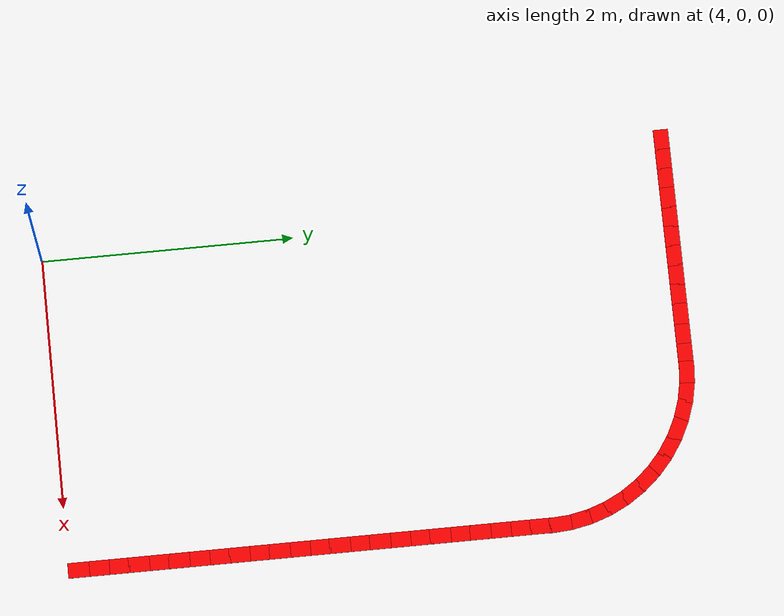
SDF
<sdf version="1.6">
 <world name="transformer_world">
  <model name="path_right_24">
   <static>true</static>
   <pose>6.50000 0.07917 0.00300 0 0 1.57080</pose>
   <link name="link">
    <visual name="visual">
     <cast_shadows>false</cast_shadows>
     <geometry><box><size>0.16833 0.12000 0.00600</size></box></geometry>
     <material><ambient>1 0 0 1</ambient><diffuse>1 0 0 1</diffuse><emissive>0.35 0 0 1</emissive></material>
    </visual>
   </link>
  </model>
  <model name="path_right_25">
   <static>true</static>
   <pose>6.50000 0.23750 0.00300 0 0 1.57080</pose>
   <link name="link">
    <visual name="visual">
     <cast_shadows>false</cast_shadows>
     <geometry><box><size>0.16833 0.12000 0.00600</size></box></geometry>
     <material><ambient>1 0 0 1</ambient><diffuse>1 0 0 1</diffuse><emissive>0.35 0 0 1</emissive></material>
    </visual>
   </link>
  </model>
  <model name="path_right_26">
   <static>true</static>
   <pose>6.50000 0.39583 0.00300 0 0 1.57080</pose>
   <link name="link">
    <visual name="visual">
     <cast_shadows>false</cast_shadows>
     <geometry><box><size>0.16833 0.12000 0.00600</size></box></geometry>
     <material><ambient>1 0 0 1</ambient><diffuse>1 0 0 1</diffuse><emissive>0.35 0 0 1</emissive></material>
    </visual>
   </link>
  </model>
  <model name="path_right_27">
   <static>true</static>
   <pose>6.50000 0.55417 0.00300 0 0 1.57080</pose>
   <link name="link">
    <visual name="visual">
     <cast_shadows>false</cast_shadows>
     <geometry><box><size>0.16833 0.12000 0.00600</size></box></geometry>
     <material><ambient>1 0 0 1</ambient><diffuse>1 0 0 1</diffuse><emissive>0.35 0 0 1</emissive></material>
    </visual>
   </link>
  </model>
  <model name="path_right_28">
   <static>true</static>
   <pose>6.50000 0.71250 0.00300 0 0 1.57080</pose>
   <link name="link">
    <visual name="visual">
     <cast_shadows>false</cast_shadows>
     <geometry><box><size>0.16833 0.12000 0.00600</size></box></geometry>
     <material><ambient>1 0 0 1</ambient><diffuse>1 0 0 1</diffuse><emissive>0.35 0 0 1</emissive></material>
    </visual>
   </link>
  </model>
  <model name="path_right_29">
   <static>true</static>
   <pose>6.50000 0.87083 0.00300 0 0 1.57080</pose>
   <link name="link">
    <visual name="visual">
     <cast_shadows>false</cast_shadows>
     <geometry><box><size>0.16833 0.12000 0.00600</size></box></geometry>
     <material><ambient>1 0 0 1</ambient><diffuse>1 0 0 1</diffuse><emissive>0.35 0 0 1</emissive></material>
    </visual>
   </link>
  </model>
  <model name="path_right_30">
   <static>true</static>
   <pose>6.50000 1.02917 0.00300 0 0 1.57080</pose>
   <link name="link">
    <visual name="visual">
     <cast_shadows>false</cast_shadows>
     <geometry><box><size>0.16833 0.12000 0.00600</size></box></geometry>
     <material><ambient>1 0 0 1</ambient><diffuse>1 0 0 1</diffuse><emissive>0.35 0 0 1</emissive></material>
    </visual>
   </link>
  </model>
  <model name="path_right_31">
   <static>true</static>
   <pose>6.50000 1.18750 0.00300 0 0 1.57080</pose>
   <link name="link">
    <visual name="visual">
     <cast_shadows>false</cast_shadows>
     <geometry><box><size>0.16833 0.12000 0.00600</size></box></geometry>
     <material><ambient>1 0 0 1</ambient><diffuse>1 0 0 1</diffuse><emissive>0.35 0 0 1</emissive></material>
    </visual>
   </link>
  </model>
  <model name="path_right_32">
   <static>true</static>
   <pose>6.50000 1.34583 0.00300 0 0 1.57080</pose>
   <link name="link">
    <visual name="visual">
     <cast_shadows>false</cast_shadows>
     <geometry><box><size>0.16833 0.12000 0.00600</size></box></geometry>
     <material><ambient>1 0 0 1</ambient><diffuse>1 0 0 1</diffuse><emissive>0.35 0 0 1</emissive></material>
    </visual>
   </link>
  </model>
  <model name="path_right_33">
   <static>true</static>
   <pose>6.50000 1.50417 0.00300 0 0 1.57080</pose>
   <link name="link">
    <visual name="visual">
     <cast_shadows>false</cast_shadows>
     <geometry><box><size>0.16833 0.12000 0.00600</size></box></geometry>
     <material><ambient>1 0 0 1</ambient><diffuse>1 0 0 1</diffuse><emissive>0.35 0 0 1</emissive></material>
    </visual>
   </link>
  </model>
  <model name="path_right_34">
   <static>true</static>
   <pose>6.50000 1.66250 0.00300 0 0 1.57080</pose>
   <link name="link">
    <visual name="visual">
     <cast_shadows>false</cast_shadows>
     <geometry><box><size>0.16833 0.12000 0.00600</size></box></geometry>
     <material><ambient>1 0 0 1</ambient><diffuse>1 0 0 1</diffuse><emissive>0.35 0 0 1</emissive></material>
    </visual>
   </link>
  </model>
  <model name="path_right_35">
   <static>true</static>
   <pose>6.50000 1.82083 0.00300 0 0 1.57080</pose>
   <link name="link">
    <visual name="visual">
     <cast_shadows>false</cast_shadows>
     <geometry><box><size>0.16833 0.12000 0.00600</size></box></geometry>
     <material><ambient>1 0 0 1</ambient><diffuse>1 0 0 1</diffuse><emissive>0.35 0 0 1</emissive></material>
    </visual>
   </link>
  </model>
  <model name="path_right_36">
   <static>true</static>
   <pose>6.50000 1.97917 0.00300 0 0 1.57080</pose>
   <link name="link">
    <visual name="visual">
     <cast_shadows>false</cast_shadows>
     <geometry><box><size>0.16833 0.12000 0.00600</size></box></geometry>
     <material><ambient>1 0 0 1</ambient><diffuse>1 0 0 1</diffuse><emissive>0.35 0 0 1</emissive></material>
    </visual>
   </link>
  </model>
  <model name="path_right_37">
   <static>true</static>
   <pose>6.50000 2.13750 0.00300 0 0 1.57080</pose>
   <link name="link">
    <visual name="visual">
     <cast_shadows>false</cast_shadows>
     <geometry><box><size>0.16833 0.12000 0.00600</size></box></geometry>
     <material><ambient>1 0 0 1</ambient><diffuse>1 0 0 1</diffuse><emissive>0.35 0 0 1</emissive></material>
    </visual>
   </link>
  </model>
  <model name="path_right_38">
   <static>true</static>
   <pose>6.50000 2.29583 0.00300 0 0 1.57080</pose>
   <link name="link">
    <visual name="visual">
     <cast_shadows>false</cast_shadows>
     <geometry><box><size>0.16833 0.12000 0.00600</size></box></geometry>
     <material><ambient>1 0 0 1</ambient><diffuse>1 0 0 1</diffuse><emissive>0.35 0 0 1</emissive></material>
    </visual>
   </link>
  </model>
  <model name="path_right_39">
   <static>true</static>
   <pose>6.50000 2.45417 0.00300 0 0 1.57080</pose>
   <link name="link">
    <visual name="visual">
     <cast_shadows>false</cast_shadows>
     <geometry><box><size>0.16833 0.12000 0.00600</size></box></geometry>
     <material><ambient>1 0 0 1</ambient><diffuse>1 0 0 1</diffuse><emissive>0.35 0 0 1</emissive></material>
    </visual>
   </link>
  </model>
  <model name="path_right_40">
   <static>true</static>
   <pose>6.50000 2.61250 0.00300 0 0 1.57080</pose>
   <link name="link">
    <visual name="visual">
     <cast_shadows>false</cast_shadows>
     <geometry><box><size>0.16833 0.12000 0.00600</size></box></geometry>
     <material><ambient>1 0 0 1</ambient><diffuse>1 0 0 1</diffuse><emissive>0.35 0 0 1</emissive></material>
    </visual>
   </link>
  </model>
  <model name="path_right_41">
   <static>true</static>
   <pose>6.50000 2.77083 0.00300 0 0 1.57080</pose>
   <link name="link">
    <visual name="visual">
     <cast_shadows>false</cast_shadows>
     <geometry><box><size>0.16833 0.12000 0.00600</size></box></geometry>
     <material><ambient>1 0 0 1</ambient><diffuse>1 0 0 1</diffuse><emissive>0.35 0 0 1</emissive></material>
    </visual>
   </link>
  </model>
  <model name="path_right_42">
   <static>true</static>
   <pose>6.50000 2.92917 0.00300 0 0 1.57080</pose>
   <link name="link">
    <visual name="visual">
     <cast_shadows>false</cast_shadows>
     <geometry><box><size>0.16833 0.12000 0.00600</size></box></geometry>
     <material><ambient>1 0 0 1</ambient><diffuse>1 0 0 1</diffuse><emissive>0.35 0 0 1</emissive></material>
    </visual>
   </link>
  </model>
  <model name="path_right_43">
   <static>true</static>
   <pose>6.50000 3.08750 0.00300 0 0 1.57080</pose>
   <link name="link">
    <visual name="visual">
     <cast_shadows>false</cast_shadows>
     <geometry><box><size>0.16833 0.12000 0.00600</size></box></geometry>
     <material><ambient>1 0 0 1</ambient><diffuse>1 0 0 1</diffuse><emissive>0.35 0 0 1</emissive></material>
    </visual>
   </link>
  </model>
  <model name="path_right_44">
   <static>true</static>
   <pose>6.50000 3.24583 0.00300 0 0 1.57080</pose>
   <link name="link">
    <visual name="visual">
     <cast_shadows>false</cast_shadows>
     <geometry><box><size>0.16833 0.12000 0.00600</size></box></geometry>
     <material><ambient>1 0 0 1</ambient><diffuse>1 0 0 1</diffuse><emissive>0.35 0 0 1</emissive></material>
    </visual>
   </link>
  </model>
  <model name="path_right_45">
   <static>true</static>
   <pose>6.50000 3.40417 0.00300 0 0 1.57080</pose>
   <link name="link">
    <visual name="visual">
     <cast_shadows>false</cast_shadows>
     <geometry><box><size>0.16833 0.12000 0.00600</size></box></geometry>
     <material><ambient>1 0 0 1</ambient><diffuse>1 0 0 1</diffuse><emissive>0.35 0 0 1</emissive></material>
    </visual>
   </link>
  </model>
  <model name="path_right_46">
   <static>true</static>
   <pose>6.50000 3.56250 0.00300 0 0 1.57080</pose>
   <link name="link">
    <visual name="visual">
     <cast_shadows>false</cast_shadows>
     <geometry><box><size>0.16833 0.12000 0.00600</size></box></geometry>
     <material><ambient>1 0 0 1</ambient><diffuse>1 0 0 1</diffuse><emissive>0.35 0 0 1</emissive></material>
    </visual>
   </link>
  </model>
  <model name="path_right_47">
   <static>true</static>
   <pose>6.50000 3.72083 0.00300 0 0 1.57080</pose>
   <link name="link">
    <visual name="visual">
     <cast_shadows>false</cast_shadows>
     <geometry><box><size>0.16833 0.12000 0.00600</size></box></geometry>
     <material><ambient>1 0 0 1</ambient><diffuse>1 0 0 1</diffuse><emissive>0.35 0 0 1</emissive></material>
    </visual>
   </link>
  </model>
  <model name="path_corner_tr_0">
   <static>true</static>
   <pose>6.49743 3.87848 0.00300 0 0 1.63625</pose>
   <link name="link">
    <visual name="visual">
     <cast_shadows>false</cast_shadows>
     <geometry><box><size>0.17708 0.12000 0.00600</size></box></geometry>
     <material><ambient>1 0 0 1</ambient><diffuse>1 0 0 1</diffuse><emissive>0.35 0 0 1</emissive></material>
    </visual>
   </link>
  </model>
  <model name="path_corner_tr_1">
   <static>true</static>
   <pose>6.47694 4.03411 0.00300 0 0 1.76715</pose>
   <link name="link">
    <visual name="visual">
     <cast_shadows>false</cast_shadows>
     <geometry><box><size>0.17708 0.12000 0.00600</size></box></geometry>
     <material><ambient>1 0 0 1</ambient><diffuse>1 0 0 1</diffuse><emissive>0.35 0 0 1</emissive></material>
    </visual>
   </link>
  </model>
  <model name="path_corner_tr_2">
   <static>true</static>
   <pose>6.43632 4.18573 0.00300 0 0 1.89805</pose>
   <link name="link">
    <visual name="visual">
     <cast_shadows>false</cast_shadows>
     <geometry><box><size>0.17708 0.12000 0.00600</size></box></geometry>
     <material><ambient>1 0 0 1</ambient><diffuse>1 0 0 1</diffuse><emissive>0.35 0 0 1</emissive></material>
    </visual>
   </link>
  </model>
  <model name="path_corner_tr_3">
   <static>true</static>
   <pose>6.37625 4.33075 0.00300 0 0 2.02895</pose>
   <link name="link">
    <visual name="visual">
     <cast_shadows>false</cast_shadows>
     <geometry><box><size>0.17708 0.12000 0.00600</size></box></geometry>
     <material><ambient>1 0 0 1</ambient><diffuse>1 0 0 1</diffuse><emissive>0.35 0 0 1</emissive></material>
    </visual>
   </link>
  </model>
  <model name="path_corner_tr_4">
   <static>true</static>
   <pose>6.29776 4.46668 0.00300 0 0 2.15984</pose>
   <link name="link">
    <visual name="visual">
     <cast_shadows>false</cast_shadows>
     <geometry><box><size>0.17708 0.12000 0.00600</size></box></geometry>
     <material><ambient>1 0 0 1</ambient><diffuse>1 0 0 1</diffuse><emissive>0.35 0 0 1</emissive></material>
    </visual>
   </link>
  </model>
  <model name="path_corner_tr_5">
   <static>true</static>
   <pose>6.20221 4.59121 0.00300 0 0 2.29074</pose>
   <link name="link">
    <visual name="visual">
     <cast_shadows>false</cast_shadows>
     <geometry><box><size>0.17708 0.12000 0.00600</size></box></geometry>
     <material><ambient>1 0 0 1</ambient><diffuse>1 0 0 1</diffuse><emissive>0.35 0 0 1</emissive></material>
    </visual>
   </link>
  </model>
  <model name="path_corner_tr_6">
   <static>true</static>
   <pose>6.09121 4.70221 0.00300 0 0 2.42164</pose>
   <link name="link">
    <visual name="visual">
     <cast_shadows>false</cast_shadows>
     <geometry><box><size>0.17708 0.12000 0.00600</size></box></geometry>
     <material><ambient>1 0 0 1</ambient><diffuse>1 0 0 1</diffuse><emissive>0.35 0 0 1</emissive></material>
    </visual>
   </link>
  </model>
  <model name="path_corner_tr_7">
   <static>true</static>
   <pose>5.96668 4.79776 0.00300 0 0 2.55254</pose>
   <link name="link">
    <visual name="visual">
     <cast_shadows>false</cast_shadows>
     <geometry><box><size>0.17708 0.12000 0.00600</size></box></geometry>
     <material><ambient>1 0 0 1</ambient><diffuse>1 0 0 1</diffuse><emissive>0.35 0 0 1</emissive></material>
    </visual>
   </link>
  </model>
  <model name="path_corner_tr_8">
   <static>true</static>
   <pose>5.83075 4.87625 0.00300 0 0 2.68344</pose>
   <link name="link">
    <visual name="visual">
     <cast_shadows>false</cast_shadows>
     <geometry><box><size>0.17708 0.12000 0.00600</size></box></geometry>
     <material><ambient>1 0 0 1</ambient><diffuse>1 0 0 1</diffuse><emissive>0.35 0 0 1</emissive></material>
    </visual>
   </link>
  </model>
  <model name="path_corner_tr_9">
   <static>true</static>
   <pose>5.68573 4.93632 0.00300 0 0 2.81434</pose>
   <link name="link">
    <visual name="visual">
     <cast_shadows>false</cast_shadows>
     <geometry><box><size>0.17708 0.12000 0.00600</size></box></geometry>
     <material><ambient>1 0 0 1</ambient><diffuse>1 0 0 1</diffuse><emissive>0.35 0 0 1</emissive></material>
    </visual>
   </link>
  </model>
  <model name="path_corner_tr_10">
   <static>true</static>
   <pose>5.53411 4.97694 0.00300 0 0 2.94524</pose>
   <link name="link">
    <visual name="visual">
     <cast_shadows>false</cast_shadows>
     <geometry><box><size>0.17708 0.12000 0.00600</size></box></geometry>
     <material><ambient>1 0 0 1</ambient><diffuse>1 0 0 1</diffuse><emissive>0.35 0 0 1</emissive></material>
    </visual>
   </link>
  </model>
  <model name="path_corner_tr_11">
   <static>true</static>
   <pose>5.37848 4.99743 0.00300 0 0 3.07614</pose>
   <link name="link">
    <visual name="visual">
     <cast_shadows>false</cast_shadows>
     <geometry><box><size>0.17708 0.12000 0.00600</size></box></geometry>
     <material><ambient>1 0 0 1</ambient><diffuse>1 0 0 1</diffuse><emissive>0.35 0 0 1</emissive></material>
    </visual>
   </link>
  </model>
  <model name="path_top_0">
   <static>true</static>
   <pose>5.22090 5.00000 0.00300 0 0 3.14159</pose>
   <link name="link">
    <visual name="visual">
     <cast_shadows>false</cast_shadows>
     <geometry><box><size>0.16821 0.12000 0.00600</size></box></geometry>
     <material><ambient>1 0 0 1</ambient><diffuse>1 0 0 1</diffuse><emissive>0.35 0 0 1</emissive></material>
    </visual>
   </link>
  </model>
  <model name="path_top_1">
   <static>true</static>
   <pose>5.06269 5.00000 0.00300 0 0 3.14159</pose>
   <link name="link">
    <visual name="visual">
     <cast_shadows>false</cast_shadows>
     <geometry><box><size>0.16821 0.12000 0.00600</size></box></geometry>
     <material><ambient>1 0 0 1</ambient><diffuse>1 0 0 1</diffuse><emissive>0.35 0 0 1</emissive></material>
    </visual>
   </link>
  </model>
  <model name="path_top_2">
   <static>true</static>
   <pose>4.90448 5.00000 0.00300 0 0 3.14159</pose>
   <link name="link">
    <visual name="visual">
     <cast_shadows>false</cast_shadows>
     <geometry><box><size>0.16821 0.12000 0.00600</size></box></geometry>
     <material><ambient>1 0 0 1</ambient><diffuse>1 0 0 1</diffuse><emissive>0.35 0 0 1</emissive></material>
    </visual>
   </link>
  </model>
  <model name="path_top_3">
   <static>true</static>
   <pose>4.74627 5.00000 0.00300 0 0 3.14159</pose>
   <link name="link">
    <visual name="visual">
     <cast_shadows>false</cast_shadows>
     <geometry><box><size>0.16821 0.12000 0.00600</size></box></geometry>
     <material><ambient>1 0 0 1</ambient><diffuse>1 0 0 1</diffuse><emissive>0.35 0 0 1</emissive></material>
    </visual>
   </link>
  </model>
  <model name="path_top_4">
   <static>true</static>
   <pose>4.58806 5.00000 0.00300 0 0 3.14159</pose>
   <link name="link">
    <visual name="visual">
     <cast_shadows>false</cast_shadows>
     <geometry><box><size>0.16821 0.12000 0.00600</size></box></geometry>
     <material><ambient>1 0 0 1</ambient><diffuse>1 0 0 1</diffuse><emissive>0.35 0 0 1</emissive></material>
    </visual>
   </link>
  </model>
  <model name="path_top_5">
   <static>true</static>
   <pose>4.42985 5.00000 0.00300 0 0 3.14159</pose>
   <link name="link">
    <visual name="visual">
     <cast_shadows>false</cast_shadows>
     <geometry><box><size>0.16821 0.12000 0.00600</size></box></geometry>
     <material><ambient>1 0 0 1</ambient><diffuse>1 0 0 1</diffuse><emissive>0.35 0 0 1</emissive></material>
    </visual>
   </link>
  </model>
  <model name="path_top_6">
   <static>true</static>
   <pose>4.27164 5.00000 0.00300 0 0 3.14159</pose>
   <link name="link">
    <visual name="visual">
     <cast_shadows>false</cast_shadows>
     <geometry><box><size>0.16821 0.12000 0.00600</size></box></geometry>
     <material><ambient>1 0 0 1</ambient><diffuse>1 0 0 1</diffuse><emissive>0.35 0 0 1</emissive></material>
    </visual>
   </link>
  </model>
  <model name="path_top_7">
   <static>true</static>
   <pose>4.11343 5.00000 0.00300 0 0 3.14159</pose>
   <link name="link">
    <visual name="visual">
     <cast_shadows>false</cast_shadows>
     <geometry><box><size>0.16821 0.12000 0.00600</size></box></geometry>
     <material><ambient>1 0 0 1</ambient><diffuse>1 0 0 1</diffuse><emissive>0.35 0 0 1</emissive></material>
    </visual>
   </link>
  </model>
  <model name="path_top_8">
   <static>true</static>
   <pose>3.95522 5.00000 0.00300 0 0 3.14159</pose>
   <link name="link">
    <visual name="visual">
     <cast_shadows>false</cast_shadows>
     <geometry><box><size>0.16821 0.12000 0.00600</size></box></geometry>
     <material><ambient>1 0 0 1</ambient><diffuse>1 0 0 1</diffuse><emissive>0.35 0 0 1</emissive></material>
    </visual>
   </link>
  </model>
  <model name="path_top_9">
   <static>true</static>
   <pose>3.79701 5.00000 0.00300 0 0 3.14159</pose>
   <link name="link">
    <visual name="visual">
     <cast_shadows>false</cast_shadows>
     <geometry><box><size>0.16821 0.12000 0.00600</size></box></geometry>
     <material><ambient>1 0 0 1</ambient><diffuse>1 0 0 1</diffuse><emissive>0.35 0 0 1</emissive></material>
    </visual>
   </link>
  </model>
  <model name="path_top_10">
   <static>true</static>
   <pose>3.63881 5.00000 0.00300 0 0 3.14159</pose>
   <link name="link">
    <visual name="visual">
     <cast_shadows>false</cast_shadows>
     <geometry><box><size>0.16821 0.12000 0.00600</size></box></geometry>
     <material><ambient>1 0 0 1</ambient><diffuse>1 0 0 1</diffuse><emissive>0.35 0 0 1</emissive></material>
    </visual>
   </link>
  </model>
  <model name="path_top_11">
   <static>true</static>
   <pose>3.48060 5.00000 0.00300 0 0 3.14159</pose>
   <link name="link">
    <visual name="visual">
     <cast_shadows>false</cast_shadows>
     <geometry><box><size>0.16821 0.12000 0.00600</size></box></geometry>
     <material><ambient>1 0 0 1</ambient><diffuse>1 0 0 1</diffuse><emissive>0.35 0 0 1</emissive></material>
    </visual>
   </link>
  </model>
 </world>
</sdf>
